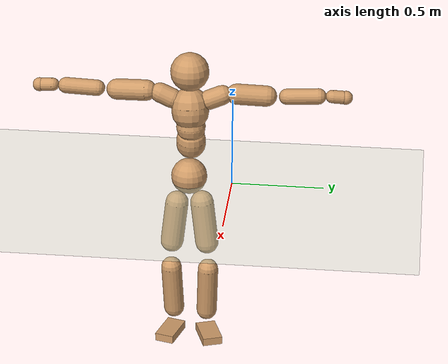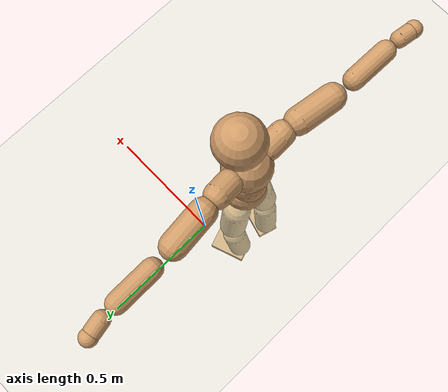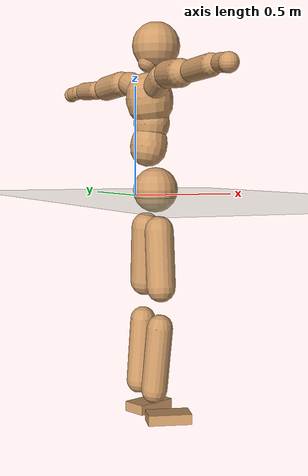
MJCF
<mujoco model="humanoid">
  <compiler coordinate="local"/>
  <default>
    <joint damping="0.0" armature="0.01" stiffness="0.0" limited="true"/>
    <geom conaffinity="1" condim="3" contype="7" margin="0.001" rgba="0.8 0.6 .4 1"/>
  </default>
  <asset>
    <texture type="skybox" builtin="gradient" rgb1=".4 .5 .6" rgb2="0 0 0" width="100" height="100"/>
    <texture builtin="flat" height="1278" mark="cross" markrgb="1 1 1" name="texgeom" random="0.01" rgb1="0.8 0.6 0.4" rgb2="0.8 0.6 0.4" type="cube" width="127"/>
    <texture builtin="checker" height="100" name="texplane" rgb1="0 0 0" rgb2="0.8 0.8 0.8" type="2d" width="100"/>
    <material name="MatPlane" reflectance="0.5" shininess="1" specular="1" texrepeat="60 60" texture="texplane"/>
    <material name="geom" texture="texgeom" texuniform="true"/>
  </asset>
  <worldbody>
    <light cutoff="100" diffuse="1 1 1" dir="-0 0 -1.3" directional="true" exponent="1" pos="0 0 1.3" specular=".1 .1 .1"/>
    <geom conaffinity="1" condim="3" name="floor" pos="0 0 0" rgba="0.8 0.9 0.8 1" size="100 100 .2" type="plane" material="MatPlane"/>
    <body name="Pelvis" pos="-0.0031 -0.2353 0.0324">
      <freejoint name="Pelvis"/>
      <geom type="sphere" contype="1" conaffinity="1" density="500" size="0.0986" pos="0.0000 0.0000 0.0000" name="Pelvis"/>
      <body name="L_Hip" pos="-0.0176 0.0594 -0.0835">
        <joint name="L_Hip_x" type="hinge" pos="0 0 0" axis="1 0 0" stiffness="800" damping="80" armature="0.02" range="-180.0000 180.0000"/>
        <joint name="L_Hip_y" type="hinge" pos="0 0 0" axis="0 1 0" stiffness="800" damping="80" armature="0.02" range="-180.0000 180.0000"/>
        <joint name="L_Hip_z" type="hinge" pos="0 0 0" axis="0 0 1" stiffness="800" damping="80" armature="0.02" range="-180.0000 180.0000"/>
        <geom type="capsule" contype="1" conaffinity="1" density="500" fromto="0.0019 0.0095 -0.0823 0.0075 0.0380 -0.3292" size="0.0638" name="L_Hip"/>
        <body name="L_Knee" pos="0.0094 0.0475 -0.4115">
          <joint name="L_Knee_x" type="hinge" pos="0 0 0" axis="1 0 0" stiffness="800" damping="80" armature="0.02" range="-180.0000 180.0000"/>
          <joint name="L_Knee_y" type="hinge" pos="0 0 0" axis="0 1 0" stiffness="800" damping="80" armature="0.02" range="-180.0000 180.0000"/>
          <joint name="L_Knee_z" type="hinge" pos="0 0 0" axis="0 0 1" stiffness="800" damping="80" armature="0.02" range="-180.0000 180.0000"/>
          <geom type="capsule" contype="1" conaffinity="1" density="500" fromto="-0.0076 -0.0031 -0.0922 -0.0303 -0.0123 -0.3690" size="0.0564" name="L_Knee"/>
          <body name="L_Ankle" pos="-0.0379 -0.0154 -0.4612">
            <joint name="L_Ankle_x" type="hinge" pos="0 0 0" axis="1 0 0" stiffness="800" damping="80" armature="0.02" range="-180.0000 180.0000"/>
            <joint name="L_Ankle_y" type="hinge" pos="0 0 0" axis="0 1 0" stiffness="800" damping="80" armature="0.02" range="-180.0000 180.0000"/>
            <joint name="L_Ankle_z" type="hinge" pos="0 0 0" axis="0 0 1" stiffness="800" damping="80" armature="0.02" range="-180.0000 180.0000"/>
            <geom type="box" contype="1" conaffinity="1" density="500" pos="0.0635 0.0224 -0.0321" size="0.0927 0.0548 0.022" quat="0.9857 0.0000 0.0000 0.1687" name="L_Ankle"/>
            <body name="L_Toe" pos="0.127 0.0448 -0.0641">
              <joint name="L_Toe_x" type="hinge" pos="0 0 0" axis="1 0 0" stiffness="500" damping="50" armature="0.02" range="-180.0000 180.0000"/>
              <joint name="L_Toe_y" type="hinge" pos="0 0 0" axis="0 1 0" stiffness="500" damping="50" armature="0.02" range="-180.0000 180.0000"/>
              <joint name="L_Toe_z" type="hinge" pos="0 0 0" axis="0 0 1" stiffness="500" damping="50" armature="0.02" range="-180.0000 180.0000"/>
              <geom type="box" contype="1" conaffinity="1" density="500" pos="0.0000 0.0000 0.0316" size="0.0011 0.0026 0.0011" quat="0.9849 0.0000 0.0000 0.1731" name="L_Toe"/>
            </body>
          </body>
        </body>
      </body>
      <body name="R_Hip" pos="-0.0132 -0.0607 -0.0921">
        <joint name="R_Hip_x" type="hinge" pos="0 0 0" axis="1 0 0" stiffness="800" damping="80" armature="0.02" range="-180.0000 180.0000"/>
        <joint name="R_Hip_y" type="hinge" pos="0 0 0" axis="0 1 0" stiffness="800" damping="80" armature="0.02" range="-180.0000 180.0000"/>
        <joint name="R_Hip_z" type="hinge" pos="0 0 0" axis="0 0 1" stiffness="800" damping="80" armature="0.02" range="-180.0000 180.0000"/>
        <geom type="capsule" contype="1" conaffinity="1" density="500" fromto="-0.0010 -0.0094 -0.0816 -0.0042 -0.0378 -0.3264" size="0.063" name="R_Hip"/>
        <body name="R_Knee" pos="-0.0052 -0.0472 -0.408">
          <joint name="R_Knee_x" type="hinge" pos="0 0 0" axis="1 0 0" stiffness="800" damping="80" armature="0.02" range="-180.0000 180.0000"/>
          <joint name="R_Knee_y" type="hinge" pos="0 0 0" axis="0 1 0" stiffness="800" damping="80" armature="0.02" range="-180.0000 180.0000"/>
          <joint name="R_Knee_z" type="hinge" pos="0 0 0" axis="0 0 1" stiffness="800" damping="80" armature="0.02" range="-180.0000 180.0000"/>
          <geom type="capsule" contype="1" conaffinity="1" density="500" fromto="-0.0071 0.0040 -0.0907 -0.0284 0.0159 -0.3629" size="0.0565" name="R_Knee"/>
          <body name="R_Ankle" pos="-0.0355 0.0199 -0.4537">
            <joint name="R_Ankle_x" type="hinge" pos="0 0 0" axis="1 0 0" stiffness="800" damping="80" armature="0.02" range="-180.0000 180.0000"/>
            <joint name="R_Ankle_y" type="hinge" pos="0 0 0" axis="0 1 0" stiffness="800" damping="80" armature="0.02" range="-180.0000 180.0000"/>
            <joint name="R_Ankle_z" type="hinge" pos="0 0 0" axis="0 0 1" stiffness="800" damping="80" armature="0.02" range="-180.0000 180.0000"/>
            <geom type="box" contype="1" conaffinity="1" density="500" pos="0.0680 -0.0188 -0.0327" size="0.095 0.0527 0.0225" quat="0.9909 0.0000 0.0000 -0.1348" name="R_Ankle"/>
            <body name="R_Toe" pos="0.1359 -0.0377 -0.0653">
              <joint name="R_Toe_x" type="hinge" pos="0 0 0" axis="1 0 0" stiffness="500" damping="50" armature="0.02" range="-180.0000 180.0000"/>
              <joint name="R_Toe_y" type="hinge" pos="0 0 0" axis="0 1 0" stiffness="500" damping="50" armature="0.02" range="-180.0000 180.0000"/>
              <joint name="R_Toe_z" type="hinge" pos="0 0 0" axis="0 0 1" stiffness="500" damping="50" armature="0.02" range="-180.0000 180.0000"/>
              <geom type="box" contype="1" conaffinity="1" density="500" pos="0.0000 0.0000 0.0324" size="0.0011 0.0026 0.0011" quat="0.9920 0.0000 0.0000 -0.1262" name="R_Toe"/>
            </body>
          </body>
        </body>
      </body>
      <body name="Torso" pos="-0.0413 0.0048 0.1264">
        <joint name="Torso_x" type="hinge" pos="0 0 0" axis="1 0 0" stiffness="1000" damping="100" armature="0.02" range="-180.0000 180.0000"/>
        <joint name="Torso_y" type="hinge" pos="0 0 0" axis="0 1 0" stiffness="1000" damping="100" armature="0.02" range="-180.0000 180.0000"/>
        <joint name="Torso_z" type="hinge" pos="0 0 0" axis="0 0 1" stiffness="1000" damping="100" armature="0.02" range="-180.0000 180.0000"/>
        <geom type="capsule" contype="1" conaffinity="1" density="500" fromto="0.0151 0.0025 0.0819 0.0101 0.0017 0.0546" size="0.0801" name="Torso"/>
        <body name="Spine" pos="0.0252 0.0042 0.1365">
          <joint name="Spine_x" type="hinge" pos="0 0 0" axis="1 0 0" stiffness="1000" damping="100" armature="0.02" range="-180.0000 180.0000"/>
          <joint name="Spine_y" type="hinge" pos="0 0 0" axis="0 1 0" stiffness="1000" damping="100" armature="0.02" range="-180.0000 180.0000"/>
          <joint name="Spine_z" type="hinge" pos="0 0 0" axis="0 0 1" stiffness="1000" damping="100" armature="0.02" range="-180.0000 180.0000"/>
          <geom type="capsule" contype="1" conaffinity="1" density="500" fromto="0.0010 -0.0014 0.0334 0.0007 -0.0009 0.0223" size="0.0791" name="Spine"/>
          <body name="Chest" pos="0.0017 -0.0023 0.0557">
            <joint name="Chest_x" type="hinge" pos="0 0 0" axis="1 0 0" stiffness="1000" damping="100" armature="0.02" range="-180.0000 180.0000"/>
            <joint name="Chest_y" type="hinge" pos="0 0 0" axis="0 1 0" stiffness="1000" damping="100" armature="0.02" range="-180.0000 180.0000"/>
            <joint name="Chest_z" type="hinge" pos="0 0 0" axis="0 0 1" stiffness="1000" damping="100" armature="0.02" range="-180.0000 180.0000"/>
            <geom type="capsule" contype="1" conaffinity="1" density="500" fromto="-0.0149 -0.0046 0.0897 -0.0100 -0.0031 0.0598" size="0.1025" name="Chest"/>
            <body name="Neck" pos="-0.0317 -0.0132 0.2161">
              <joint name="Neck_x" type="hinge" pos="0 0 0" axis="1 0 0" stiffness="500" damping="50" armature="0.02" range="-180.0000 180.0000"/>
              <joint name="Neck_y" type="hinge" pos="0 0 0" axis="0 1 0" stiffness="500" damping="50" armature="0.02" range="-180.0000 180.0000"/>
              <joint name="Neck_z" type="hinge" pos="0 0 0" axis="0 0 1" stiffness="500" damping="50" armature="0.02" range="-180.0000 180.0000"/>
              <geom type="capsule" contype="1" conaffinity="1" density="500" fromto="0.0102 0.0021 0.0179 0.0407 0.0084 0.0715" size="0.0456" name="Neck"/>
              <body name="Head" pos="0.0509 0.0106 0.0894">
                <joint name="Head_x" type="hinge" pos="0 0 0" axis="1 0 0" stiffness="500" damping="50" armature="0.02" range="-180.0000 180.0000"/>
                <joint name="Head_y" type="hinge" pos="0 0 0" axis="0 1 0" stiffness="500" damping="50" armature="0.02" range="-180.0000 180.0000"/>
                <joint name="Head_z" type="hinge" pos="0 0 0" axis="0 0 1" stiffness="500" damping="50" armature="0.02" range="-180.0000 180.0000"/>
                <geom type="sphere" contype="1" conaffinity="1" density="500" size="0.1048" pos="0.0000 0.0000 0.0000" name="Head"/>
              </body>
            </body>
            <body name="L_Thorax" pos="-0.019 0.0705 0.1172">
              <joint name="L_Thorax_x" type="hinge" pos="0 0 0" axis="1 0 0" stiffness="500" damping="50" armature="0.02" range="-180.0000 180.0000"/>
              <joint name="L_Thorax_y" type="hinge" pos="0 0 0" axis="0 1 0" stiffness="500" damping="50" armature="0.02" range="-180.0000 180.0000"/>
              <joint name="L_Thorax_z" type="hinge" pos="0 0 0" axis="0 0 1" stiffness="500" damping="50" armature="0.02" range="-180.0000 180.0000"/>
              <geom type="capsule" contype="1" conaffinity="1" density="500" fromto="-0.0035 0.0242 0.0092 -0.0141 0.0966 0.0367" size="0.0539" name="L_Thorax"/>
              <body name="L_Shoulder" pos="-0.0176 0.1208 0.0459">
                <joint name="L_Shoulder_x" type="hinge" pos="0 0 0" axis="1 0 0" stiffness="500" damping="50" armature="0.02" range="-720.0000 720.0000"/>
                <joint name="L_Shoulder_y" type="hinge" pos="0 0 0" axis="0 1 0" stiffness="500" damping="50" armature="0.02" range="-720.0000 720.0000"/>
                <joint name="L_Shoulder_z" type="hinge" pos="0 0 0" axis="0 0 1" stiffness="500" damping="50" armature="0.02" range="-720.0000 720.0000"/>
                <geom type="capsule" contype="1" conaffinity="1" density="500" fromto="-0.0051 0.0533 -0.0035 -0.0204 0.2133 -0.0141" size="0.0564" name="L_Shoulder"/>
                <body name="L_Elbow" pos="-0.0256 0.2667 -0.0176">
                  <joint name="L_Elbow_x" type="hinge" pos="0 0 0" axis="1 0 0" stiffness="500" damping="50" armature="0.02" range="-720.0000 720.0000"/>
                  <joint name="L_Elbow_y" type="hinge" pos="0 0 0" axis="0 1 0" stiffness="500" damping="50" armature="0.02" range="-720.0000 720.0000"/>
                  <joint name="L_Elbow_z" type="hinge" pos="0 0 0" axis="0 0 1" stiffness="500" damping="50" armature="0.02" range="-720.0000 720.0000"/>
                  <geom type="capsule" contype="1" conaffinity="1" density="500" fromto="-0.0014 0.0561 0.0028 -0.0057 0.2246 0.0112" size="0.0433" name="L_Elbow"/>
                  <body name="L_Wrist" pos="-0.0071 0.2807 0.014">
                    <joint name="L_Wrist_x" type="hinge" pos="0 0 0" axis="1 0 0" stiffness="300" damping="30" armature="0.02" range="-180.0000 180.0000"/>
                    <joint name="L_Wrist_y" type="hinge" pos="0 0 0" axis="0 1 0" stiffness="300" damping="30" armature="0.02" range="-180.0000 180.0000"/>
                    <joint name="L_Wrist_z" type="hinge" pos="0 0 0" axis="0 0 1" stiffness="300" damping="30" armature="0.02" range="-180.0000 180.0000"/>
                    <geom type="capsule" contype="1" conaffinity="1" density="500" fromto="-0.0033 0.0182 -0.0022 -0.0133 0.0727 -0.0089" size="0.0355" name="L_Wrist"/>
                    <body name="L_Hand" pos="-0.0166 0.0909 -0.0111">
                      <joint name="L_Hand_x" type="hinge" pos="0 0 0" axis="1 0 0" stiffness="300" damping="30" armature="0.02" range="-180.0000 180.0000"/>
                      <joint name="L_Hand_y" type="hinge" pos="0 0 0" axis="0 1 0" stiffness="300" damping="30" armature="0.02" range="-180.0000 180.0000"/>
                      <joint name="L_Hand_z" type="hinge" pos="0 0 0" axis="0 0 1" stiffness="300" damping="30" armature="0.02" range="-180.0000 180.0000"/>
                      <geom type="sphere" contype="1" conaffinity="1" density="500" size="0.0372" pos="0.0000 0.0000 0.0000" name="L_Hand"/>
                    </body>
                  </body>
                </body>
              </body>
            </body>
            <body name="R_Thorax" pos="-0.0239 -0.0805 0.1152">
              <joint name="R_Thorax_x" type="hinge" pos="0 0 0" axis="1 0 0" stiffness="500" damping="50" armature="0.02" range="-180.0000 180.0000"/>
              <joint name="R_Thorax_y" type="hinge" pos="0 0 0" axis="0 1 0" stiffness="500" damping="50" armature="0.02" range="-180.0000 180.0000"/>
              <joint name="R_Thorax_z" type="hinge" pos="0 0 0" axis="0 0 1" stiffness="500" damping="50" armature="0.02" range="-180.0000 180.0000"/>
              <geom type="capsule" contype="1" conaffinity="1" density="500" fromto="-0.0015 -0.0222 0.0095 -0.0058 -0.0887 0.0381" size="0.0539" name="R_Thorax"/>
              <body name="R_Shoulder" pos="-0.0073 -0.1108 0.0477">
                <joint name="R_Shoulder_x" type="hinge" pos="0 0 0" axis="1 0 0" stiffness="500" damping="50" armature="0.02" range="-720.0000 720.0000"/>
                <joint name="R_Shoulder_y" type="hinge" pos="0 0 0" axis="0 1 0" stiffness="500" damping="50" armature="0.02" range="-720.0000 720.0000"/>
                <joint name="R_Shoulder_z" type="hinge" pos="0 0 0" axis="0 0 1" stiffness="500" damping="50" armature="0.02" range="-720.0000 720.0000"/>
                <geom type="capsule" contype="1" conaffinity="1" density="500" fromto="-0.0067 -0.0542 -0.0035 -0.0267 -0.2169 -0.0140" size="0.057" name="R_Shoulder"/>
                <body name="R_Elbow" pos="-0.0334 -0.2712 -0.0174">
                  <joint name="R_Elbow_x" type="hinge" pos="0 0 0" axis="1 0 0" stiffness="500" damping="50" armature="0.02" range="-720.0000 720.0000"/>
                  <joint name="R_Elbow_y" type="hinge" pos="0 0 0" axis="0 1 0" stiffness="500" damping="50" armature="0.02" range="-720.0000 720.0000"/>
                  <joint name="R_Elbow_z" type="hinge" pos="0 0 0" axis="0 0 1" stiffness="500" damping="50" armature="0.02" range="-720.0000 720.0000"/>
                  <geom type="capsule" contype="1" conaffinity="1" density="500" fromto="-0.0013 -0.0567 0.0016 -0.0052 -0.2268 0.0064" size="0.0437" name="R_Elbow"/>
                  <body name="R_Wrist" pos="-0.0065 -0.2835 0.008">
                    <joint name="R_Wrist_x" type="hinge" pos="0 0 0" axis="1 0 0" stiffness="300" damping="30" armature="0.02" range="-180.0000 180.0000"/>
                    <joint name="R_Wrist_y" type="hinge" pos="0 0 0" axis="0 1 0" stiffness="300" damping="30" armature="0.02" range="-180.0000 180.0000"/>
                    <joint name="R_Wrist_z" type="hinge" pos="0 0 0" axis="0 0 1" stiffness="300" damping="30" armature="0.02" range="-180.0000 180.0000"/>
                    <geom type="capsule" contype="1" conaffinity="1" density="500" fromto="-0.0021 -0.0184 -0.0018 -0.0085 -0.0738 -0.0072" size="0.0358" name="R_Wrist"/>
                    <body name="R_Hand" pos="-0.0107 -0.0922 -0.009">
                      <joint name="R_Hand_x" type="hinge" pos="0 0 0" axis="1 0 0" stiffness="300" damping="30" armature="0.02" range="-180.0000 180.0000"/>
                      <joint name="R_Hand_y" type="hinge" pos="0 0 0" axis="0 1 0" stiffness="300" damping="30" armature="0.02" range="-180.0000 180.0000"/>
                      <joint name="R_Hand_z" type="hinge" pos="0 0 0" axis="0 0 1" stiffness="300" damping="30" armature="0.02" range="-180.0000 180.0000"/>
                      <geom type="sphere" contype="1" conaffinity="1" density="500" size="0.0374" pos="0.0000 0.0000 0.0000" name="R_Hand"/>
                    </body>
                  </body>
                </body>
              </body>
            </body>
          </body>
        </body>
      </body>
    </body>
  </worldbody>
  <actuator>
    <motor name="L_Hip_x" joint="L_Hip_x" gear="500"/>
    <motor name="L_Hip_y" joint="L_Hip_y" gear="500"/>
    <motor name="L_Hip_z" joint="L_Hip_z" gear="500"/>
    <motor name="L_Knee_x" joint="L_Knee_x" gear="500"/>
    <motor name="L_Knee_y" joint="L_Knee_y" gear="500"/>
    <motor name="L_Knee_z" joint="L_Knee_z" gear="500"/>
    <motor name="L_Ankle_x" joint="L_Ankle_x" gear="500"/>
    <motor name="L_Ankle_y" joint="L_Ankle_y" gear="500"/>
    <motor name="L_Ankle_z" joint="L_Ankle_z" gear="500"/>
    <motor name="L_Toe_x" joint="L_Toe_x" gear="500"/>
    <motor name="L_Toe_y" joint="L_Toe_y" gear="500"/>
    <motor name="L_Toe_z" joint="L_Toe_z" gear="500"/>
    <motor name="R_Hip_x" joint="R_Hip_x" gear="500"/>
    <motor name="R_Hip_y" joint="R_Hip_y" gear="500"/>
    <motor name="R_Hip_z" joint="R_Hip_z" gear="500"/>
    <motor name="R_Knee_x" joint="R_Knee_x" gear="500"/>
    <motor name="R_Knee_y" joint="R_Knee_y" gear="500"/>
    <motor name="R_Knee_z" joint="R_Knee_z" gear="500"/>
    <motor name="R_Ankle_x" joint="R_Ankle_x" gear="500"/>
    <motor name="R_Ankle_y" joint="R_Ankle_y" gear="500"/>
    <motor name="R_Ankle_z" joint="R_Ankle_z" gear="500"/>
    <motor name="R_Toe_x" joint="R_Toe_x" gear="500"/>
    <motor name="R_Toe_y" joint="R_Toe_y" gear="500"/>
    <motor name="R_Toe_z" joint="R_Toe_z" gear="500"/>
    <motor name="Torso_x" joint="Torso_x" gear="500"/>
    <motor name="Torso_y" joint="Torso_y" gear="500"/>
    <motor name="Torso_z" joint="Torso_z" gear="500"/>
    <motor name="Spine_x" joint="Spine_x" gear="500"/>
    <motor name="Spine_y" joint="Spine_y" gear="500"/>
    <motor name="Spine_z" joint="Spine_z" gear="500"/>
    <motor name="Chest_x" joint="Chest_x" gear="500"/>
    <motor name="Chest_y" joint="Chest_y" gear="500"/>
    <motor name="Chest_z" joint="Chest_z" gear="500"/>
    <motor name="Neck_x" joint="Neck_x" gear="500"/>
    <motor name="Neck_y" joint="Neck_y" gear="500"/>
    <motor name="Neck_z" joint="Neck_z" gear="500"/>
    <motor name="Head_x" joint="Head_x" gear="500"/>
    <motor name="Head_y" joint="Head_y" gear="500"/>
    <motor name="Head_z" joint="Head_z" gear="500"/>
    <motor name="L_Thorax_x" joint="L_Thorax_x" gear="500"/>
    <motor name="L_Thorax_y" joint="L_Thorax_y" gear="500"/>
    <motor name="L_Thorax_z" joint="L_Thorax_z" gear="500"/>
    <motor name="L_Shoulder_x" joint="L_Shoulder_x" gear="500"/>
    <motor name="L_Shoulder_y" joint="L_Shoulder_y" gear="500"/>
    <motor name="L_Shoulder_z" joint="L_Shoulder_z" gear="500"/>
    <motor name="L_Elbow_x" joint="L_Elbow_x" gear="500"/>
    <motor name="L_Elbow_y" joint="L_Elbow_y" gear="500"/>
    <motor name="L_Elbow_z" joint="L_Elbow_z" gear="500"/>
    <motor name="L_Wrist_x" joint="L_Wrist_x" gear="500"/>
    <motor name="L_Wrist_y" joint="L_Wrist_y" gear="500"/>
    <motor name="L_Wrist_z" joint="L_Wrist_z" gear="500"/>
    <motor name="L_Hand_x" joint="L_Hand_x" gear="500"/>
    <motor name="L_Hand_y" joint="L_Hand_y" gear="500"/>
    <motor name="L_Hand_z" joint="L_Hand_z" gear="500"/>
    <motor name="R_Thorax_x" joint="R_Thorax_x" gear="500"/>
    <motor name="R_Thorax_y" joint="R_Thorax_y" gear="500"/>
    <motor name="R_Thorax_z" joint="R_Thorax_z" gear="500"/>
    <motor name="R_Shoulder_x" joint="R_Shoulder_x" gear="500"/>
    <motor name="R_Shoulder_y" joint="R_Shoulder_y" gear="500"/>
    <motor name="R_Shoulder_z" joint="R_Shoulder_z" gear="500"/>
    <motor name="R_Elbow_x" joint="R_Elbow_x" gear="500"/>
    <motor name="R_Elbow_y" joint="R_Elbow_y" gear="500"/>
    <motor name="R_Elbow_z" joint="R_Elbow_z" gear="500"/>
    <motor name="R_Wrist_x" joint="R_Wrist_x" gear="500"/>
    <motor name="R_Wrist_y" joint="R_Wrist_y" gear="500"/>
    <motor name="R_Wrist_z" joint="R_Wrist_z" gear="500"/>
    <motor name="R_Hand_x" joint="R_Hand_x" gear="500"/>
    <motor name="R_Hand_y" joint="R_Hand_y" gear="500"/>
    <motor name="R_Hand_z" joint="R_Hand_z" gear="500"/>
  </actuator>
  <contact>
    <exclude body1="Torso" body2="Chest"/>
    <exclude body1="Head" body2="Chest"/>
    <exclude body1="R_Knee" body2="R_Toe"/>
    <exclude body1="R_Knee" body2="L_Ankle"/>
    <exclude body1="R_Knee" body2="L_Toe"/>
    <exclude body1="L_Knee" body2="L_Toe"/>
    <exclude body1="L_Knee" body2="R_Ankle"/>
    <exclude body1="L_Knee" body2="R_Toe"/>
    <exclude body1="L_Shoulder" body2="Chest"/>
    <exclude body1="R_Shoulder" body2="Chest"/>
  </contact>
  <sensor/>
  <size njmax="700" nconmax="700"/>
</mujoco>
